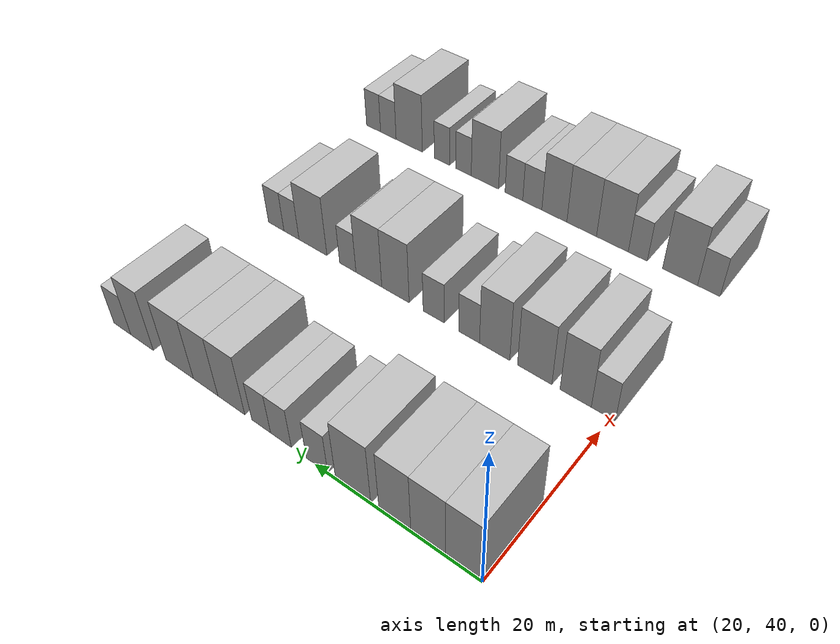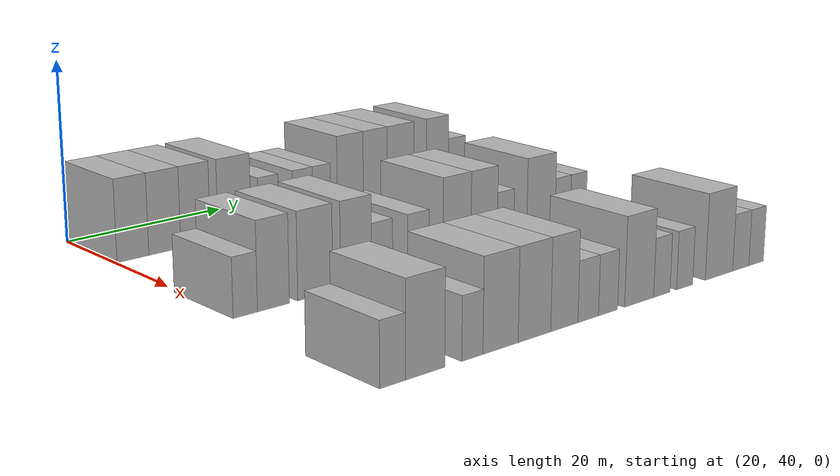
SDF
<sdf version="1.6">
 <world name="default">
  <model name="building_77">
   <static>1</static>
   <pose>25.0000 42.1484 0 0.000000 0.000000 0.000000</pose>
   <link name="link">
    <pose>0 0 4.50 0 0 0</pose>
    <collision name="collision"><geometry><box><size>10.0000 3.8569 9.0000</size></box></geometry></collision>
    <visual name="visual">
     <cast_shadows>0</cast_shadows>
     <geometry><box><size>10.0000 3.8569 9.0000</size></box></geometry>
     <material>
      <script>
       <uri>model://HANNAS_wall/materials/scripts</uri>
       <uri>model://HANNAS_wall/materials/textures</uri>
       <name>vrc/HANNAS_wall</name>
      </script>
     </material>
    </visual>
   </link>
  </model>
  <model name="building_78">
   <static>1</static>
   <pose>25.0000 46.0795 0 0.000000 0.000000 0.000000</pose>
   <link name="link">
    <pose>0 0 4.50 0 0 0</pose>
    <collision name="collision"><geometry><box><size>10.0000 4.0053 9.0000</size></box></geometry></collision>
    <visual name="visual">
     <cast_shadows>0</cast_shadows>
     <geometry><box><size>10.0000 4.0053 9.0000</size></box></geometry>
     <material>
      <script>
       <uri>model://HANNAS_wall/materials/scripts</uri>
       <uri>model://HANNAS_wall/materials/textures</uri>
       <name>vrc/HANNAS_wall</name>
      </script>
     </material>
    </visual>
   </link>
  </model>
  <model name="building_79">
   <static>1</static>
   <pose>25.0000 49.9900 0 0.000000 0.000000 0.000000</pose>
   <link name="link">
    <pose>0 0 4.50 0 0 0</pose>
    <collision name="collision"><geometry><box><size>10.0000 3.8157 9.0000</size></box></geometry></collision>
    <visual name="visual">
     <cast_shadows>0</cast_shadows>
     <geometry><box><size>10.0000 3.8157 9.0000</size></box></geometry>
     <material>
      <script>
       <uri>model://HANNAS_wall/materials/scripts</uri>
       <uri>model://HANNAS_wall/materials/textures</uri>
       <name>vrc/HANNAS_wall</name>
      </script>
     </material>
    </visual>
   </link>
  </model>
  <model name="building_80">
   <static>1</static>
   <pose>25.0000 55.1063 0 0.000000 0.000000 0.000000</pose>
   <link name="link">
    <pose>0 0 4.50 0 0 0</pose>
    <collision name="collision"><geometry><box><size>10.0000 4.4169 9.0000</size></box></geometry></collision>
    <visual name="visual">
     <cast_shadows>0</cast_shadows>
     <geometry><box><size>10.0000 4.4169 9.0000</size></box></geometry>
     <material>
      <script>
       <uri>model://HANNAS_wall/materials/scripts</uri>
       <uri>model://HANNAS_wall/materials/textures</uri>
       <name>vrc/HANNAS_wall</name>
      </script>
     </material>
    </visual>
   </link>
  </model>
  <model name="building_81">
   <static>1</static>
   <pose>25.0000 59.7191 0 0.000000 0.000000 0.000000</pose>
   <link name="link">
    <pose>0 0 3.00 0 0 0</pose>
    <collision name="collision"><geometry><box><size>10.0000 2.8088 6.0000</size></box></geometry></collision>
    <visual name="visual">
     <cast_shadows>0</cast_shadows>
     <geometry><box><size>10.0000 2.8088 6.0000</size></box></geometry>
     <material>
      <script>
       <uri>model://HANNAS_wall/materials/scripts</uri>
       <uri>model://HANNAS_wall/materials/textures</uri>
       <name>vrc/HANNAS_wall</name>
      </script>
     </material>
    </visual>
   </link>
  </model>
  <model name="building_82">
   <static>1</static>
   <pose>25.0000 64.5472 0 0.000000 0.000000 0.000000</pose>
   <link name="link">
    <pose>0 0 3.00 0 0 0</pose>
    <collision name="collision"><geometry><box><size>10.0000 2.8473 6.0000</size></box></geometry></collision>
    <visual name="visual">
     <cast_shadows>0</cast_shadows>
     <geometry><box><size>10.0000 2.8473 6.0000</size></box></geometry>
     <material>
      <script>
       <uri>model://HANNAS_wall/materials/scripts</uri>
       <uri>model://HANNAS_wall/materials/textures</uri>
       <name>vrc/HANNAS_wall</name>
      </script>
     </material>
    </visual>
   </link>
  </model>
  <model name="building_83">
   <static>1</static>
   <pose>25.0000 67.2822 0 0.000000 0.000000 0.000000</pose>
   <link name="link">
    <pose>0 0 3.00 0 0 0</pose>
    <collision name="collision"><geometry><box><size>10.0000 2.6227 6.0000</size></box></geometry></collision>
    <visual name="visual">
     <cast_shadows>0</cast_shadows>
     <geometry><box><size>10.0000 2.6227 6.0000</size></box></geometry>
     <material>
      <script>
       <uri>model://HANNAS_wall/materials/scripts</uri>
       <uri>model://HANNAS_wall/materials/textures</uri>
       <name>vrc/HANNAS_wall</name>
      </script>
     </material>
    </visual>
   </link>
  </model>
  <model name="building_84">
   <static>1</static>
   <pose>25.0000 71.5518 0 0.000000 0.000000 0.000000</pose>
   <link name="link">
    <pose>0 0 4.50 0 0 0</pose>
    <collision name="collision"><geometry><box><size>10.0000 3.9167 9.0000</size></box></geometry></collision>
    <visual name="visual">
     <cast_shadows>0</cast_shadows>
     <geometry><box><size>10.0000 3.9167 9.0000</size></box></geometry>
     <material>
      <script>
       <uri>model://HANNAS_wall/materials/scripts</uri>
       <uri>model://HANNAS_wall/materials/textures</uri>
       <name>vrc/HANNAS_wall</name>
      </script>
     </material>
    </visual>
   </link>
  </model>
  <model name="building_85">
   <static>1</static>
   <pose>25.0000 75.3489 0 0.000000 0.000000 0.000000</pose>
   <link name="link">
    <pose>0 0 4.50 0 0 0</pose>
    <collision name="collision"><geometry><box><size>10.0000 3.6775 9.0000</size></box></geometry></collision>
    <visual name="visual">
     <cast_shadows>0</cast_shadows>
     <geometry><box><size>10.0000 3.6775 9.0000</size></box></geometry>
     <material>
      <script>
       <uri>model://HANNAS_wall/materials/scripts</uri>
       <uri>model://HANNAS_wall/materials/textures</uri>
       <name>vrc/HANNAS_wall</name>
      </script>
     </material>
    </visual>
   </link>
  </model>
  <model name="building_86">
   <static>1</static>
   <pose>25.0000 79.3343 0 0.000000 0.000000 0.000000</pose>
   <link name="link">
    <pose>0 0 4.50 0 0 0</pose>
    <collision name="collision"><geometry><box><size>10.0000 4.2932 9.0000</size></box></geometry></collision>
    <visual name="visual">
     <cast_shadows>0</cast_shadows>
     <geometry><box><size>10.0000 4.2932 9.0000</size></box></geometry>
     <material>
      <script>
       <uri>model://HANNAS_wall/materials/scripts</uri>
       <uri>model://HANNAS_wall/materials/textures</uri>
       <name>vrc/HANNAS_wall</name>
      </script>
     </material>
    </visual>
   </link>
  </model>
  <model name="building_87">
   <static>1</static>
   <pose>25.0000 85.3126 0 0.000000 0.000000 0.000000</pose>
   <link name="link">
    <pose>0 0 4.50 0 0 0</pose>
    <collision name="collision"><geometry><box><size>10.0000 3.6634 9.0000</size></box></geometry></collision>
    <visual name="visual">
     <cast_shadows>0</cast_shadows>
     <geometry><box><size>10.0000 3.6634 9.0000</size></box></geometry>
     <material>
      <script>
       <uri>model://HANNAS_wall/materials/scripts</uri>
       <uri>model://HANNAS_wall/materials/textures</uri>
       <name>vrc/HANNAS_wall</name>
      </script>
     </material>
    </visual>
   </link>
  </model>
  <model name="building_88">
   <static>1</static>
   <pose>25.0000 88.5590 0 0.000000 0.000000 0.000000</pose>
   <link name="link">
    <pose>0 0 3.00 0 0 0</pose>
    <collision name="collision"><geometry><box><size>10.0000 2.8295 6.0000</size></box></geometry></collision>
    <visual name="visual">
     <cast_shadows>0</cast_shadows>
     <geometry><box><size>10.0000 2.8295 6.0000</size></box></geometry>
     <material>
      <script>
       <uri>model://HANNAS_wall/materials/scripts</uri>
       <uri>model://HANNAS_wall/materials/textures</uri>
       <name>vrc/HANNAS_wall</name>
      </script>
     </material>
    </visual>
   </link>
  </model>
  <model name="building_196">
   <static>1</static>
   <pose>47.0000 40.8755 0 0.000000 0.000000 0.000000</pose>
   <link name="link">
    <pose>0 0 3.00 0 0 0</pose>
    <collision name="collision"><geometry><box><size>10.0000 2.8028 6.0000</size></box></geometry></collision>
    <visual name="visual">
     <cast_shadows>0</cast_shadows>
     <geometry><box><size>10.0000 2.8028 6.0000</size></box></geometry>
     <material>
      <script>
       <uri>model://HANNAS_wall/materials/scripts</uri>
       <uri>model://HANNAS_wall/materials/textures</uri>
       <name>vrc/HANNAS_wall</name>
      </script>
     </material>
    </visual>
   </link>
  </model>
  <model name="building_197">
   <static>1</static>
   <pose>47.0000 44.1578 0 0.000000 0.000000 0.000000</pose>
   <link name="link">
    <pose>0 0 4.50 0 0 0</pose>
    <collision name="collision"><geometry><box><size>10.0000 3.7619 9.0000</size></box></geometry></collision>
    <visual name="visual">
     <cast_shadows>0</cast_shadows>
     <geometry><box><size>10.0000 3.7619 9.0000</size></box></geometry>
     <material>
      <script>
       <uri>model://HANNAS_wall/materials/scripts</uri>
       <uri>model://HANNAS_wall/materials/textures</uri>
       <name>vrc/HANNAS_wall</name>
      </script>
     </material>
    </visual>
   </link>
  </model>
  <model name="building_198">
   <static>1</static>
   <pose>47.0000 49.1984 0 0.000000 0.000000 0.000000</pose>
   <link name="link">
    <pose>0 0 4.50 0 0 0</pose>
    <collision name="collision"><geometry><box><size>10.0000 4.3193 9.0000</size></box></geometry></collision>
    <visual name="visual">
     <cast_shadows>0</cast_shadows>
     <geometry><box><size>10.0000 4.3193 9.0000</size></box></geometry>
     <material>
      <script>
       <uri>model://HANNAS_wall/materials/scripts</uri>
       <uri>model://HANNAS_wall/materials/textures</uri>
       <name>vrc/HANNAS_wall</name>
      </script>
     </material>
    </visual>
   </link>
  </model>
  <model name="building_199">
   <static>1</static>
   <pose>47.0000 54.3399 0 0.000000 0.000000 0.000000</pose>
   <link name="link">
    <pose>0 0 4.50 0 0 0</pose>
    <collision name="collision"><geometry><box><size>10.0000 3.9638 9.0000</size></box></geometry></collision>
    <visual name="visual">
     <cast_shadows>0</cast_shadows>
     <geometry><box><size>10.0000 3.9638 9.0000</size></box></geometry>
     <material>
      <script>
       <uri>model://HANNAS_wall/materials/scripts</uri>
       <uri>model://HANNAS_wall/materials/textures</uri>
       <name>vrc/HANNAS_wall</name>
      </script>
     </material>
    </visual>
   </link>
  </model>
  <model name="building_200">
   <static>1</static>
   <pose>47.0000 57.7206 0 0.000000 0.000000 0.000000</pose>
   <link name="link">
    <pose>0 0 3.00 0 0 0</pose>
    <collision name="collision"><geometry><box><size>10.0000 2.7975 6.0000</size></box></geometry></collision>
    <visual name="visual">
     <cast_shadows>0</cast_shadows>
     <geometry><box><size>10.0000 2.7975 6.0000</size></box></geometry>
     <material>
      <script>
       <uri>model://HANNAS_wall/materials/scripts</uri>
       <uri>model://HANNAS_wall/materials/textures</uri>
       <name>vrc/HANNAS_wall</name>
      </script>
     </material>
    </visual>
   </link>
  </model>
  <model name="building_201">
   <static>1</static>
   <pose>47.0000 62.5878 0 0.000000 0.000000 0.000000</pose>
   <link name="link">
    <pose>0 0 3.00 0 0 0</pose>
    <collision name="collision"><geometry><box><size>10.0000 2.9369 6.0000</size></box></geometry></collision>
    <visual name="visual">
     <cast_shadows>0</cast_shadows>
     <geometry><box><size>10.0000 2.9369 6.0000</size></box></geometry>
     <material>
      <script>
       <uri>model://HANNAS_wall/materials/scripts</uri>
       <uri>model://HANNAS_wall/materials/textures</uri>
       <name>vrc/HANNAS_wall</name>
      </script>
     </material>
    </visual>
   </link>
  </model>
  <model name="building_202">
   <static>1</static>
   <pose>47.0000 68.0581 0 0.000000 0.000000 0.000000</pose>
   <link name="link">
    <pose>0 0 4.50 0 0 0</pose>
    <collision name="collision"><geometry><box><size>10.0000 4.0037 9.0000</size></box></geometry></collision>
    <visual name="visual">
     <cast_shadows>0</cast_shadows>
     <geometry><box><size>10.0000 4.0037 9.0000</size></box></geometry>
     <material>
      <script>
       <uri>model://HANNAS_wall/materials/scripts</uri>
       <uri>model://HANNAS_wall/materials/textures</uri>
       <name>vrc/HANNAS_wall</name>
      </script>
     </material>
    </visual>
   </link>
  </model>
  <model name="building_203">
   <static>1</static>
   <pose>47.0000 72.0067 0 0.000000 0.000000 0.000000</pose>
   <link name="link">
    <pose>0 0 4.50 0 0 0</pose>
    <collision name="collision"><geometry><box><size>10.0000 3.8933 9.0000</size></box></geometry></collision>
    <visual name="visual">
     <cast_shadows>0</cast_shadows>
     <geometry><box><size>10.0000 3.8933 9.0000</size></box></geometry>
     <material>
      <script>
       <uri>model://HANNAS_wall/materials/scripts</uri>
       <uri>model://HANNAS_wall/materials/textures</uri>
       <name>vrc/HANNAS_wall</name>
      </script>
     </material>
    </visual>
   </link>
  </model>
  <model name="building_204">
   <static>1</static>
   <pose>47.0000 75.2143 0 0.000000 0.000000 0.000000</pose>
   <link name="link">
    <pose>0 0 3.00 0 0 0</pose>
    <collision name="collision"><geometry><box><size>10.0000 2.5219 6.0000</size></box></geometry></collision>
    <visual name="visual">
     <cast_shadows>0</cast_shadows>
     <geometry><box><size>10.0000 2.5219 6.0000</size></box></geometry>
     <material>
      <script>
       <uri>model://HANNAS_wall/materials/scripts</uri>
       <uri>model://HANNAS_wall/materials/textures</uri>
       <name>vrc/HANNAS_wall</name>
      </script>
     </material>
    </visual>
   </link>
  </model>
  <model name="building_205">
   <static>1</static>
   <pose>47.0000 80.7236 0 0.000000 0.000000 0.000000</pose>
   <link name="link">
    <pose>0 0 4.50 0 0 0</pose>
    <collision name="collision"><geometry><box><size>10.0000 4.4966 9.0000</size></box></geometry></collision>
    <visual name="visual">
     <cast_shadows>0</cast_shadows>
     <geometry><box><size>10.0000 4.4966 9.0000</size></box></geometry>
     <material>
      <script>
       <uri>model://HANNAS_wall/materials/scripts</uri>
       <uri>model://HANNAS_wall/materials/textures</uri>
       <name>vrc/HANNAS_wall</name>
      </script>
     </material>
    </visual>
   </link>
  </model>
  <model name="building_206">
   <static>1</static>
   <pose>47.0000 84.2189 0 0.000000 0.000000 0.000000</pose>
   <link name="link">
    <pose>0 0 3.00 0 0 0</pose>
    <collision name="collision"><geometry><box><size>10.0000 2.4942 6.0000</size></box></geometry></collision>
    <visual name="visual">
     <cast_shadows>0</cast_shadows>
     <geometry><box><size>10.0000 2.4942 6.0000</size></box></geometry>
     <material>
      <script>
       <uri>model://HANNAS_wall/materials/scripts</uri>
       <uri>model://HANNAS_wall/materials/textures</uri>
       <name>vrc/HANNAS_wall</name>
      </script>
     </material>
    </visual>
   </link>
  </model>
  <model name="building_207">
   <static>1</static>
   <pose>47.0000 86.7619 0 0.000000 0.000000 0.000000</pose>
   <link name="link">
    <pose>0 0 3.00 0 0 0</pose>
    <collision name="collision"><geometry><box><size>10.0000 2.5917 6.0000</size></box></geometry></collision>
    <visual name="visual">
     <cast_shadows>0</cast_shadows>
     <geometry><box><size>10.0000 2.5917 6.0000</size></box></geometry>
     <material>
      <script>
       <uri>model://HANNAS_wall/materials/scripts</uri>
       <uri>model://HANNAS_wall/materials/textures</uri>
       <name>vrc/HANNAS_wall</name>
      </script>
     </material>
    </visual>
   </link>
  </model>
  <model name="building_324">
   <static>1</static>
   <pose>69.0000 40.1665 0 0.000000 0.000000 0.000000</pose>
   <link name="link">
    <pose>0 0 3.00 0 0 0</pose>
    <collision name="collision"><geometry><box><size>10.0000 2.8142 6.0000</size></box></geometry></collision>
    <visual name="visual">
     <cast_shadows>0</cast_shadows>
     <geometry><box><size>10.0000 2.8142 6.0000</size></box></geometry>
     <material>
      <script>
       <uri>model://HANNAS_wall/materials/scripts</uri>
       <uri>model://HANNAS_wall/materials/textures</uri>
       <name>vrc/HANNAS_wall</name>
      </script>
     </material>
    </visual>
   </link>
  </model>
  <model name="building_325">
   <static>1</static>
   <pose>69.0000 43.8168 0 0.000000 0.000000 0.000000</pose>
   <link name="link">
    <pose>0 0 4.50 0 0 0</pose>
    <collision name="collision"><geometry><box><size>10.0000 4.4865 9.0000</size></box></geometry></collision>
    <visual name="visual">
     <cast_shadows>0</cast_shadows>
     <geometry><box><size>10.0000 4.4865 9.0000</size></box></geometry>
     <material>
      <script>
       <uri>model://HANNAS_wall/materials/scripts</uri>
       <uri>model://HANNAS_wall/materials/textures</uri>
       <name>vrc/HANNAS_wall</name>
      </script>
     </material>
    </visual>
   </link>
  </model>
  <model name="building_326">
   <static>1</static>
   <pose>69.0000 49.3330 0 0.000000 0.000000 0.000000</pose>
   <link name="link">
    <pose>0 0 3.00 0 0 0</pose>
    <collision name="collision"><geometry><box><size>10.0000 2.5461 6.0000</size></box></geometry></collision>
    <visual name="visual">
     <cast_shadows>0</cast_shadows>
     <geometry><box><size>10.0000 2.5461 6.0000</size></box></geometry>
     <material>
      <script>
       <uri>model://HANNAS_wall/materials/scripts</uri>
       <uri>model://HANNAS_wall/materials/textures</uri>
       <name>vrc/HANNAS_wall</name>
      </script>
     </material>
    </visual>
   </link>
  </model>
  <model name="building_327">
   <static>1</static>
   <pose>69.0000 52.7855 0 0.000000 0.000000 0.000000</pose>
   <link name="link">
    <pose>0 0 4.50 0 0 0</pose>
    <collision name="collision"><geometry><box><size>10.0000 4.3589 9.0000</size></box></geometry></collision>
    <visual name="visual">
     <cast_shadows>0</cast_shadows>
     <geometry><box><size>10.0000 4.3589 9.0000</size></box></geometry>
     <material>
      <script>
       <uri>model://HANNAS_wall/materials/scripts</uri>
       <uri>model://HANNAS_wall/materials/textures</uri>
       <name>vrc/HANNAS_wall</name>
      </script>
     </material>
    </visual>
   </link>
  </model>
  <model name="building_328">
   <static>1</static>
   <pose>69.0000 57.0629 0 0.000000 0.000000 0.000000</pose>
   <link name="link">
    <pose>0 0 4.50 0 0 0</pose>
    <collision name="collision"><geometry><box><size>10.0000 4.1958 9.0000</size></box></geometry></collision>
    <visual name="visual">
     <cast_shadows>0</cast_shadows>
     <geometry><box><size>10.0000 4.1958 9.0000</size></box></geometry>
     <material>
      <script>
       <uri>model://HANNAS_wall/materials/scripts</uri>
       <uri>model://HANNAS_wall/materials/textures</uri>
       <name>vrc/HANNAS_wall</name>
      </script>
     </material>
    </visual>
   </link>
  </model>
  <model name="building_329">
   <static>1</static>
   <pose>69.0000 60.9842 0 0.000000 0.000000 0.000000</pose>
   <link name="link">
    <pose>0 0 4.50 0 0 0</pose>
    <collision name="collision"><geometry><box><size>10.0000 3.6469 9.0000</size></box></geometry></collision>
    <visual name="visual">
     <cast_shadows>0</cast_shadows>
     <geometry><box><size>10.0000 3.6469 9.0000</size></box></geometry>
     <material>
      <script>
       <uri>model://HANNAS_wall/materials/scripts</uri>
       <uri>model://HANNAS_wall/materials/textures</uri>
       <name>vrc/HANNAS_wall</name>
      </script>
     </material>
    </visual>
   </link>
  </model>
  <model name="building_330">
   <static>1</static>
   <pose>69.0000 64.2263 0 0.000000 0.000000 0.000000</pose>
   <link name="link">
    <pose>0 0 3.00 0 0 0</pose>
    <collision name="collision"><geometry><box><size>10.0000 2.8373 6.0000</size></box></geometry></collision>
    <visual name="visual">
     <cast_shadows>0</cast_shadows>
     <geometry><box><size>10.0000 2.8373 6.0000</size></box></geometry>
     <material>
      <script>
       <uri>model://HANNAS_wall/materials/scripts</uri>
       <uri>model://HANNAS_wall/materials/textures</uri>
       <name>vrc/HANNAS_wall</name>
      </script>
     </material>
    </visual>
   </link>
  </model>
  <model name="building_331">
   <static>1</static>
   <pose>69.0000 66.9898 0 0.000000 0.000000 0.000000</pose>
   <link name="link">
    <pose>0 0 3.00 0 0 0</pose>
    <collision name="collision"><geometry><box><size>10.0000 2.6897 6.0000</size></box></geometry></collision>
    <visual name="visual">
     <cast_shadows>0</cast_shadows>
     <geometry><box><size>10.0000 2.6897 6.0000</size></box></geometry>
     <material>
      <script>
       <uri>model://HANNAS_wall/materials/scripts</uri>
       <uri>model://HANNAS_wall/materials/textures</uri>
       <name>vrc/HANNAS_wall</name>
      </script>
     </material>
    </visual>
   </link>
  </model>
  <model name="building_332">
   <static>1</static>
   <pose>69.0000 71.4750 0 0.000000 0.000000 0.000000</pose>
   <link name="link">
    <pose>0 0 4.50 0 0 0</pose>
    <collision name="collision"><geometry><box><size>10.0000 4.2806 9.0000</size></box></geometry></collision>
    <visual name="visual">
     <cast_shadows>0</cast_shadows>
     <geometry><box><size>10.0000 4.2806 9.0000</size></box></geometry>
     <material>
      <script>
       <uri>model://HANNAS_wall/materials/scripts</uri>
       <uri>model://HANNAS_wall/materials/textures</uri>
       <name>vrc/HANNAS_wall</name>
      </script>
     </material>
    </visual>
   </link>
  </model>
  <model name="building_333">
   <static>1</static>
   <pose>69.0000 74.8535 0 0.000000 0.000000 0.000000</pose>
   <link name="link">
    <pose>0 0 3.00 0 0 0</pose>
    <collision name="collision"><geometry><box><size>10.0000 2.4764 6.0000</size></box></geometry></collision>
    <visual name="visual">
     <cast_shadows>0</cast_shadows>
     <geometry><box><size>10.0000 2.4764 6.0000</size></box></geometry>
     <material>
      <script>
       <uri>model://HANNAS_wall/materials/scripts</uri>
       <uri>model://HANNAS_wall/materials/textures</uri>
       <name>vrc/HANNAS_wall</name>
      </script>
     </material>
    </visual>
   </link>
  </model>
  <model name="building_334">
   <static>1</static>
   <pose>69.0000 78.3443 0 0.000000 0.000000 0.000000</pose>
   <link name="link">
    <pose>0 0 3.00 0 0 0</pose>
    <collision name="collision"><geometry><box><size>10.0000 2.5052 6.0000</size></box></geometry></collision>
    <visual name="visual">
     <cast_shadows>0</cast_shadows>
     <geometry><box><size>10.0000 2.5052 6.0000</size></box></geometry>
     <material>
      <script>
       <uri>model://HANNAS_wall/materials/scripts</uri>
       <uri>model://HANNAS_wall/materials/textures</uri>
       <name>vrc/HANNAS_wall</name>
      </script>
     </material>
    </visual>
   </link>
  </model>
  <model name="building_335">
   <static>1</static>
   <pose>69.0000 83.8341 0 0.000000 0.000000 0.000000</pose>
   <link name="link">
    <pose>0 0 4.50 0 0 0</pose>
    <collision name="collision"><geometry><box><size>10.0000 4.4745 9.0000</size></box></geometry></collision>
    <visual name="visual">
     <cast_shadows>0</cast_shadows>
     <geometry><box><size>10.0000 4.4745 9.0000</size></box></geometry>
     <material>
      <script>
       <uri>model://HANNAS_wall/materials/scripts</uri>
       <uri>model://HANNAS_wall/materials/textures</uri>
       <name>vrc/HANNAS_wall</name>
      </script>
     </material>
    </visual>
   </link>
  </model>
  <model name="building_336">
   <static>1</static>
   <pose>69.0000 87.4198 0 0.000000 0.000000 0.000000</pose>
   <link name="link">
    <pose>0 0 3.00 0 0 0</pose>
    <collision name="collision"><geometry><box><size>10.0000 2.6969 6.0000</size></box></geometry></collision>
    <visual name="visual">
     <cast_shadows>0</cast_shadows>
     <geometry><box><size>10.0000 2.6969 6.0000</size></box></geometry>
     <material>
      <script>
       <uri>model://HANNAS_wall/materials/scripts</uri>
       <uri>model://HANNAS_wall/materials/textures</uri>
       <name>vrc/HANNAS_wall</name>
      </script>
     </material>
    </visual>
   </link>
  </model>
  <model name="building_337">
   <static>1</static>
   <pose>69.0000 90.0088 0 0.000000 0.000000 0.000000</pose>
   <link name="link">
    <pose>0 0 3.00 0 0 0</pose>
    <collision name="collision"><geometry><box><size>10.0000 2.4810 6.0000</size></box></geometry></collision>
    <visual name="visual">
     <cast_shadows>0</cast_shadows>
     <geometry><box><size>10.0000 2.4810 6.0000</size></box></geometry>
     <material>
      <script>
       <uri>model://HANNAS_wall/materials/scripts</uri>
       <uri>model://HANNAS_wall/materials/textures</uri>
       <name>vrc/HANNAS_wall</name>
      </script>
     </material>
    </visual>
   </link>
  </model>
 </world>
</sdf>
